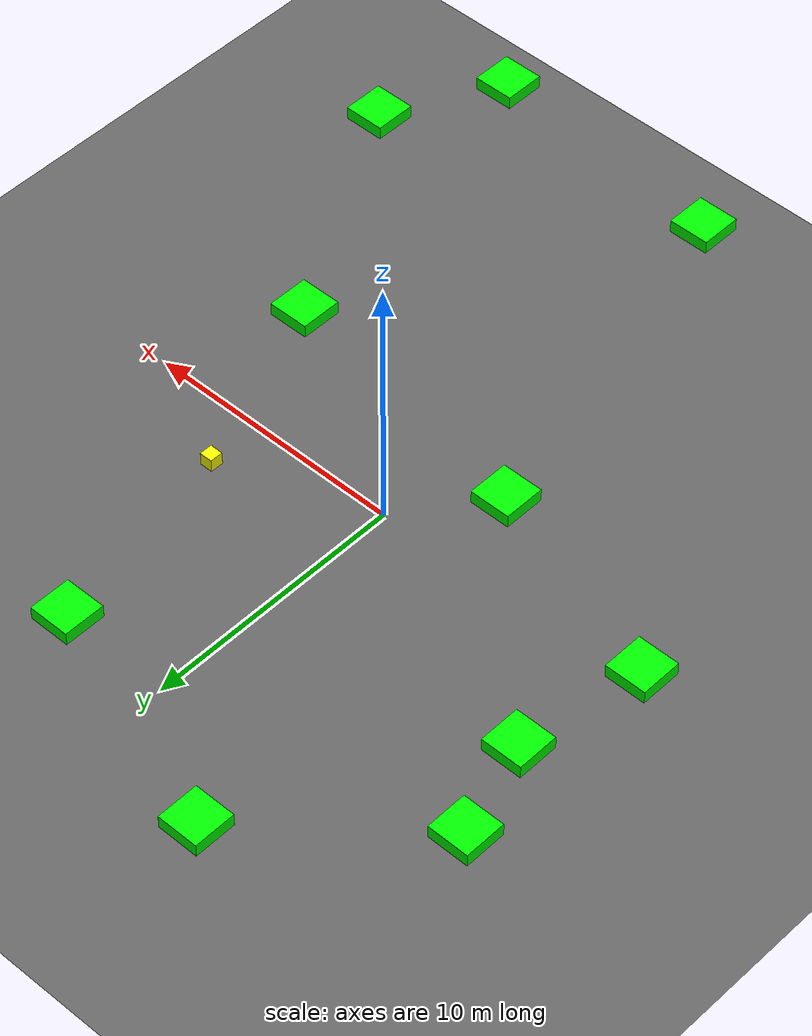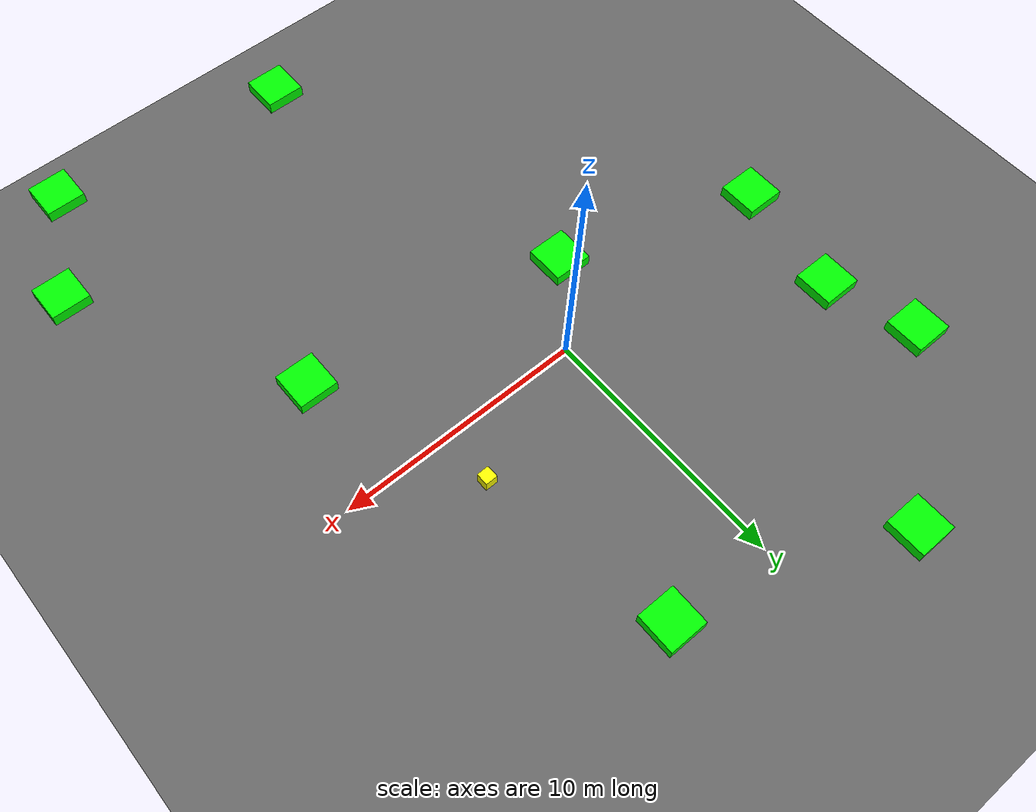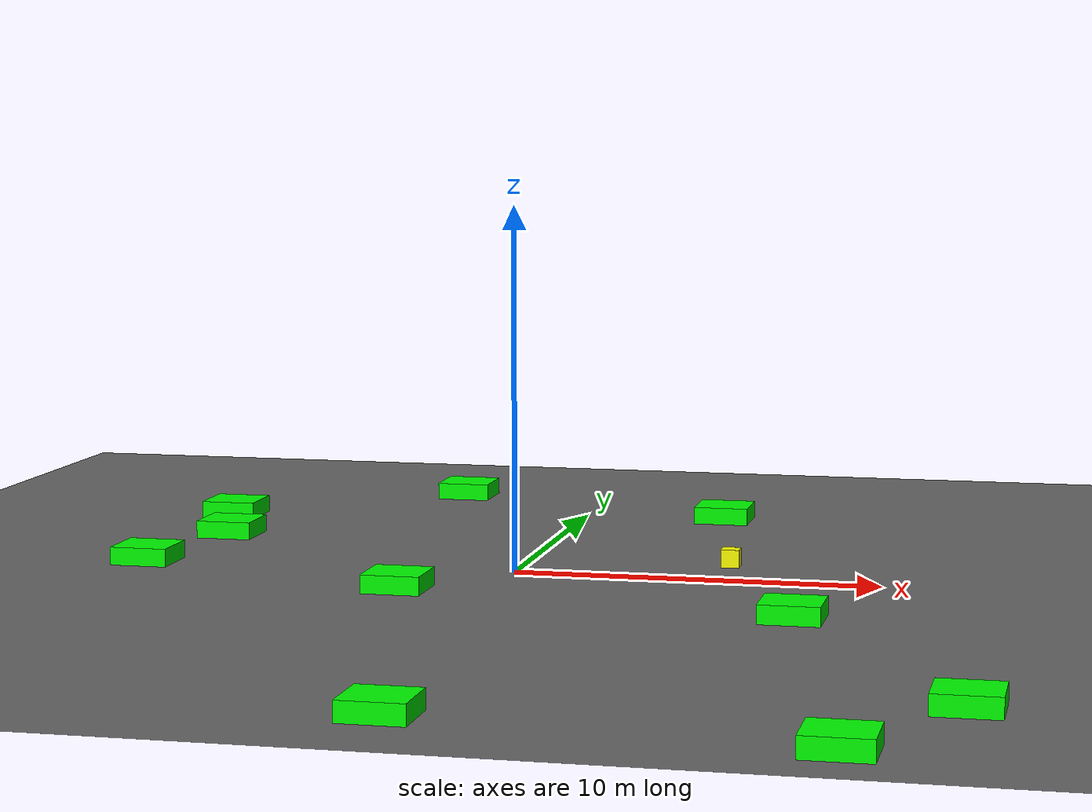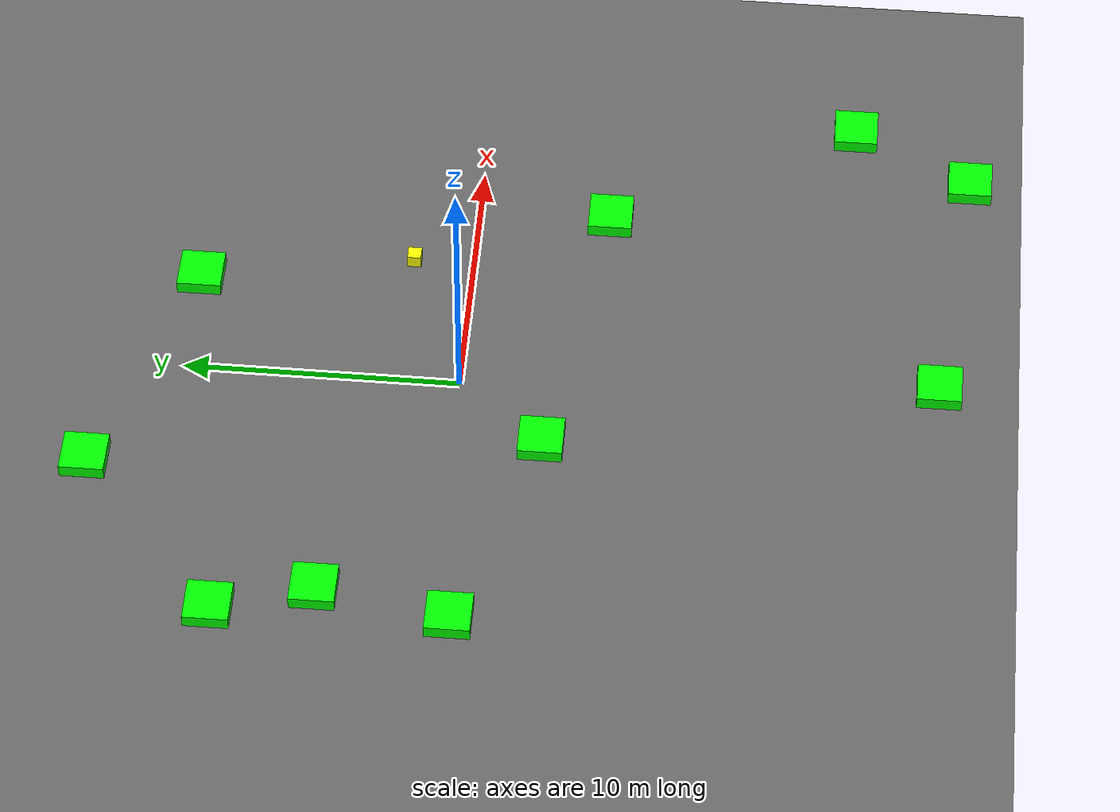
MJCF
<mujoco model="baseline_lvl4_obs10_seed3010">
    <compiler angle="degree" coordinate="local" inertiafromgeom="true"/>
    <option integrator="RK4" timestep="0.01"/>

    <asset>
        <texture builtin="gradient" height="100" rgb1="0.6 0.8 1" rgb2="0 0 0" type="skybox" width="100"/>
        <texture name="floor_texture" type="2d" builtin="checker" width="100" height="100" rgb1="0 0 0" rgb2="0.8 0.8 0.8"/>
        <material name="MatPlane" reflectance="0.5" shininess="1" specular="1" texrepeat="10 10" texture="floor_texture"/>
    </asset>

    <!-- Excluding the contact between the agent and the goal, and the agent and the floor -->
    <contact>
        <exclude body1="agent" body2="goal"/>
        <exclude body1 = "agent" body2 = "floor"/>
    </contact>

    <extension>
        <plugin plugin = "mujoco.pid">
            <instance name = "pid1">
                <config key="kp" value="2"/>
                <config key="ki" value="0"/>
                <config key="kd" value="55"/>
            </instance>
        </plugin>
    </extension>

    <worldbody>
        <light cutoff="100" diffuse="1 1 1" dir="-0 0 -1.3" directional="true" exponent="1" pos="0 0 1.3" specular=".1 .1 .1"/>
        <body name="floor" pos="0 0 0">
            <geom name="floor_geom" type="plane" size="20 20 0.1" material="MatPlane"/>
        </body>

        <!-- Goal -->
        <body name="goal" pos="12.000 -12.000 0">
            <geom name="goal_geom" type="plane" size="0.5 0.5 1" pos="0 0 0" rgba="1 0 0 1"/>
        </body>

        <!-- Agent -->
        <body name="agent" pos="5.627 2.189 0.25">
            <joint name="j1" type="slide" axis ="1 0 0 "/>
            <joint name="j2" type="slide" axis ="0 1 0 "/>
            <geom name="agent_geom" type="box" size="0.25 0.25 0.250" rgba="1 1 0 1"/>
        </body>

    <body name="obstacle1" pos="8.250 -4.844 0.250">
      <geom name="obstacle1_geom" type="box"
            size="0.800 0.800 0.250"
            rgba="0 1 0 1"/>
    </body>
    <body name="obstacle2" pos="1.075 -17.153 0.250">
      <geom name="obstacle2_geom" type="box"
            size="0.800 0.800 0.250"
            rgba="0 1 0 1"/>
    </body>
    <body name="obstacle3" pos="-2.444 -3.135 0.250">
      <geom name="obstacle3_geom" type="box"
            size="0.800 0.800 0.250"
            rgba="0 1 0 1"/>
    </body>
    <body name="obstacle4" pos="-4.509 12.884 0.250">
      <geom name="obstacle4_geom" type="box"
            size="0.800 0.800 0.250"
            rgba="0 1 0 1"/>
    </body>
    <body name="obstacle5" pos="-10.357 -0.617 0.250">
      <geom name="obstacle5_geom" type="box"
            size="0.800 0.800 0.250"
            rgba="0 1 0 1"/>
    </body>
    <body name="obstacle6" pos="-9.530 4.140 0.250">
      <geom name="obstacle6_geom" type="box"
            size="0.800 0.800 0.250"
            rgba="0 1 0 1"/>
    </body>
    <body name="obstacle7" pos="13.214 -13.746 0.250">
      <geom name="obstacle7_geom" type="box"
            size="0.800 0.800 0.250"
            rgba="0 1 0 1"/>
    </body>
    <body name="obstacle8" pos="10.951 -18.062 0.250">
      <geom name="obstacle8_geom" type="box"
            size="0.800 0.800 0.250"
            rgba="0 1 0 1"/>
    </body>
    <body name="obstacle9" pos="4.247 9.895 0.250">
      <geom name="obstacle9_geom" type="box"
            size="0.800 0.800 0.250"
            rgba="0 1 0 1"/>
    </body>
    <body name="obstacle10" pos="-10.593 7.665 0.250">
      <geom name="obstacle10_geom" type="box"
            size="0.800 0.800 0.250"
            rgba="0 1 0 1"/>
    </body>
    </worldbody>

    <actuator>
        <plugin joint="j1" plugin="mujoco.pid" instance="pid1" />
        <plugin joint="j2" plugin="mujoco.pid" instance="pid1"/>
    </actuator>

  <sensor>
    <distance name="dist1" geom1="agent_geom" geom2="obstacle1_geom" cutoff="1.5"/>
    <distance name="dist2" geom1="agent_geom" geom2="obstacle2_geom" cutoff="1.5"/>
    <distance name="dist3" geom1="agent_geom" geom2="obstacle3_geom" cutoff="1.5"/>
    <distance name="dist4" geom1="agent_geom" geom2="obstacle4_geom" cutoff="1.5"/>
    <distance name="dist5" geom1="agent_geom" geom2="obstacle5_geom" cutoff="1.5"/>
    <distance name="dist6" geom1="agent_geom" geom2="obstacle6_geom" cutoff="1.5"/>
    <distance name="dist7" geom1="agent_geom" geom2="obstacle7_geom" cutoff="1.5"/>
    <distance name="dist8" geom1="agent_geom" geom2="obstacle8_geom" cutoff="1.5"/>
    <distance name="dist9" geom1="agent_geom" geom2="obstacle9_geom" cutoff="1.5"/>
    <distance name="dist10" geom1="agent_geom" geom2="obstacle10_geom" cutoff="1.5"/>
  </sensor>
</mujoco>
